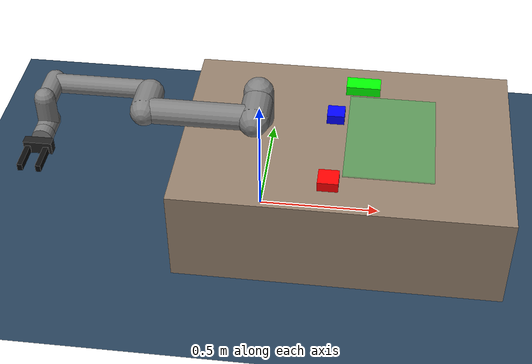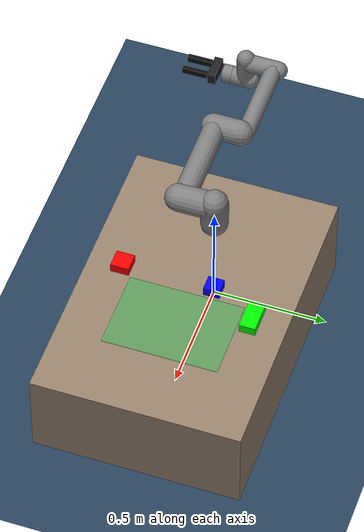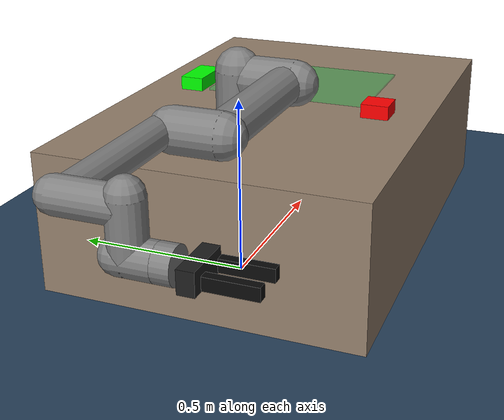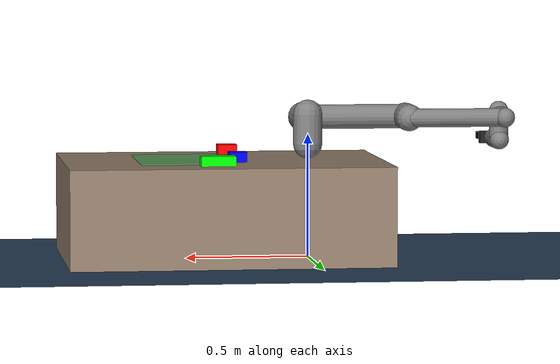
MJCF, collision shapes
<mujoco model="ur5e_llm3_pick_place">
  <compiler angle="radian" autolimits="true"/>

  <include file="ur5e_llm3_robot.xml"/>

  <statistic center="0.45 0 0.45" extent="1.0"/>

  <visual>
    <headlight diffuse="0.6 0.6 0.6" ambient="0.15 0.15 0.15" specular="0 0 0"/>
    <rgba haze="0.15 0.25 0.35 1"/>
    <global azimuth="130" elevation="-25"/>
  </visual>

  <asset>
    <texture type="skybox" builtin="gradient" rgb1="0.3 0.5 0.7" rgb2="0 0 0" width="512" height="3072"/>
    <texture type="2d" name="llm3_groundplane" builtin="checker" mark="edge" rgb1="0.2 0.3 0.4"
      rgb2="0.1 0.2 0.3" markrgb="0.8 0.8 0.8" width="300" height="300"/>
    <material name="llm3_groundplane" texture="llm3_groundplane" texuniform="true" texrepeat="5 5" reflectance="0.2"/>
    <material name="table_mat" rgba="0.58 0.50 0.42 1"/>
    <material name="target_area_mat" rgba="0.0 0.8 0.25 0.35"/>
  </asset>

  <worldbody>
    <light name="llm3_key_light" pos="0.2 -0.8 1.8" dir="0 0 -1" directional="true"/>
    <geom name="floor" size="0 0 0.05" type="plane" material="llm3_groundplane"/>

    <body name="target_table" pos="0.35 0 0.20">
      <geom name="target_table_geom" type="box" size="0.65 0.45 0.20" material="table_mat" friction="1.0 0.005 0.0001"/>
    </body>

    <geom name="target_area_marker" type="box" pos="0.525 0 0.403" size="0.175 0.25 0.003"
      material="target_area_mat" contype="0" conaffinity="0" group="1"/>

    <body name="red_box" pos="0.30 -0.30 0.42">
      <freejoint name="red_box_freejoint"/>
      <geom name="red_box_geom" type="box" size="0.04 0.04 0.02" rgba="1 0 0 1" mass="0.20"
        friction="1.0 0.005 0.0001"/>
    </body>

    <body name="blue_box" pos="0.30 0.10 0.42">
      <freejoint name="blue_box_freejoint"/>
      <geom name="blue_box_geom" type="box" size="0.035 0.035 0.02" rgba="0 0 1 1" mass="0.18"
        friction="1.0 0.005 0.0001"/>
    </body>

    <body name="green_box" pos="0.40 0.30 0.42">
      <freejoint name="green_box_freejoint"/>
      <geom name="green_box_geom" type="box" size="0.07 0.035 0.02" rgba="0 1 0 1" mass="0.25"
        friction="1.0 0.005 0.0001"/>
    </body>
  </worldbody>
</mujoco>

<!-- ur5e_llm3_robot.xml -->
<mujoco model="ur5e">
  <compiler angle="radian" autolimits="true"/>

  <option integrator="implicitfast"/>

  <default>
    <default class="ur5e">
      <material specular="0.5" shininess="0.25"/>
      <joint axis="0 1 0" range="-6.28319 6.28319" armature="0.1"/>
      <general gaintype="fixed" biastype="affine" ctrlrange="-6.2831 6.2831" gainprm="2000" biasprm="0 -2000 -400"
        forcerange="-150 150"/>
      <default class="size3">
        <default class="size3_limited">
          <joint range="-3.1415 3.1415"/>
          <general ctrlrange="-3.1415 3.1415"/>
        </default>
      </default>
      <default class="size1">
        <general gainprm="500" biasprm="0 -500 -100" forcerange="-28 28"/>
      </default>
      <default class="visual">
        <geom type="mesh" contype="0" conaffinity="0" group="2"/>
      </default>
      <default class="collision">
        <geom type="capsule" group="3"/>
        <default class="eef_collision">
          <geom type="cylinder"/>
        </default>
      </default>
      <site size="0.001" rgba="0.5 0.5 0.5 0.3" group="4"/>
    </default>
  </default>

  <asset>
    <material class="ur5e" name="black" rgba="0.033 0.033 0.033 1"/>
    <material class="ur5e" name="jointgray" rgba="0.278 0.278 0.278 1"/>
    <material class="ur5e" name="linkgray" rgba="0.82 0.82 0.82 1"/>
    <material class="ur5e" name="urblue" rgba="0.49 0.678 0.8 1"/>

    <mesh file="../assets/base_0.obj"/>
    <mesh file="../assets/base_1.obj"/>
    <mesh file="../assets/shoulder_0.obj"/>
    <mesh file="../assets/shoulder_1.obj"/>
    <mesh file="../assets/shoulder_2.obj"/>
    <mesh file="../assets/upperarm_0.obj"/>
    <mesh file="../assets/upperarm_1.obj"/>
    <mesh file="../assets/upperarm_2.obj"/>
    <mesh file="../assets/upperarm_3.obj"/>
    <mesh file="../assets/forearm_0.obj"/>
    <mesh file="../assets/forearm_1.obj"/>
    <mesh file="../assets/forearm_2.obj"/>
    <mesh file="../assets/forearm_3.obj"/>
    <mesh file="../assets/wrist1_0.obj"/>
    <mesh file="../assets/wrist1_1.obj"/>
    <mesh file="../assets/wrist1_2.obj"/>
    <mesh file="../assets/wrist2_0.obj"/>
    <mesh file="../assets/wrist2_1.obj"/>
    <mesh file="../assets/wrist2_2.obj"/>
    <mesh file="../assets/wrist3.obj"/>
  </asset>

  <worldbody>
    <light name="spotlight" mode="targetbodycom" target="wrist_2_link" pos="0 -1 2"/>
    <body name="base" pos="0 0 0.40" quat="0 0 0 -1" childclass="ur5e">
      <inertial mass="4.0" pos="0 0 0" diaginertia="0.00443333156 0.00443333156 0.0072"/>
      <geom mesh="base_0" material="black" class="visual"/>
      <geom mesh="base_1" material="jointgray" class="visual"/>
      <body name="shoulder_link" pos="0 0 0.163">
        <inertial mass="3.7" pos="0 0 0" diaginertia="0.0102675 0.0102675 0.00666"/>
        <joint name="shoulder_pan_joint" class="size3" axis="0 0 1"/>
        <geom mesh="shoulder_0" material="urblue" class="visual"/>
        <geom mesh="shoulder_1" material="black" class="visual"/>
        <geom mesh="shoulder_2" material="jointgray" class="visual"/>
        <geom class="collision" size="0.06 0.06" pos="0 0 -0.04"/>
        <body name="upper_arm_link" pos="0 0.138 0" quat="1 0 1 0">
          <inertial mass="8.393" pos="0 0 0.2125" diaginertia="0.133886 0.133886 0.0151074"/>
          <joint name="shoulder_lift_joint" class="size3"/>
          <geom mesh="upperarm_0" material="linkgray" class="visual"/>
          <geom mesh="upperarm_1" material="black" class="visual"/>
          <geom mesh="upperarm_2" material="jointgray" class="visual"/>
          <geom mesh="upperarm_3" material="urblue" class="visual"/>
          <geom class="collision" pos="0 -0.04 0" quat="1 1 0 0" size="0.06 0.06"/>
          <geom class="collision" size="0.05 0.2" pos="0 0 0.2"/>
          <body name="forearm_link" pos="0 -0.131 0.425">
            <inertial mass="2.275" pos="0 0 0.196" diaginertia="0.0311796 0.0311796 0.004095"/>
            <joint name="elbow_joint" class="size3_limited"/>
            <geom mesh="forearm_0" material="urblue" class="visual"/>
            <geom mesh="forearm_1" material="linkgray" class="visual"/>
            <geom mesh="forearm_2" material="black" class="visual"/>
            <geom mesh="forearm_3" material="jointgray" class="visual"/>
            <geom class="collision" pos="0 0.08 0" quat="1 1 0 0" size="0.055 0.06"/>
            <geom class="collision" size="0.038 0.19" pos="0 0 0.2"/>
            <body name="wrist_1_link" pos="0 0 0.392" quat="1 0 1 0">
              <inertial mass="1.219" pos="0 0.127 0" diaginertia="0.0025599 0.0025599 0.0021942"/>
              <joint name="wrist_1_joint" class="size1"/>
              <geom mesh="wrist1_0" material="black" class="visual"/>
              <geom mesh="wrist1_1" material="urblue" class="visual"/>
              <geom mesh="wrist1_2" material="jointgray" class="visual"/>
              <geom class="collision" pos="0 0.05 0" quat="1 1 0 0" size="0.04 0.07"/>
              <body name="wrist_2_link" pos="0 0.127 0">
                <inertial mass="1.219" pos="0 0 0.1" diaginertia="0.0025599 0.0025599 0.0021942"/>
                <joint name="wrist_2_joint" axis="0 0 1" class="size1"/>
                <geom mesh="wrist2_0" material="black" class="visual"/>
                <geom mesh="wrist2_1" material="urblue" class="visual"/>
                <geom mesh="wrist2_2" material="jointgray" class="visual"/>
                <geom class="collision" size="0.04 0.06" pos="0 0 0.04"/>
                <geom class="collision" pos="0 0.02 0.1" quat="1 1 0 0" size="0.04 0.04"/>
                <body name="wrist_3_link" pos="0 0 0.1">
                  <inertial mass="0.1889" pos="0 0.0771683 0" quat="1 0 0 1"
                    diaginertia="0.000132134 9.90863e-05 9.90863e-05"/>
                  <joint name="wrist_3_joint" class="size1"/>
                  <geom material="linkgray" mesh="wrist3" class="visual"/>
                  <geom class="eef_collision" pos="0 0.08 0" quat="1 1 0 0" size="0.04 0.02"/>
                  <site name="attachment_site" pos="0 0.1 0" quat="-1 1 0 0"/>
                  <body name="two_finger_gripper" pos="0 0.14 0">
                    <geom name="gripper_palm" type="box" size="0.055 0.018 0.025" rgba="0.12 0.12 0.12 1"
                      contype="0" conaffinity="0"/>
                    <body name="left_finger" pos="0.035 0.035 0">
                      <geom name="left_finger_pad" type="box" pos="0 0.045 0" size="0.010 0.055 0.014"
                        rgba="0.04 0.04 0.04 1" contype="0" conaffinity="0"/>
                    </body>
                    <body name="right_finger" pos="-0.035 0.035 0">
                      <geom name="right_finger_pad" type="box" pos="0 0.045 0" size="0.010 0.055 0.014"
                        rgba="0.04 0.04 0.04 1" contype="0" conaffinity="0"/>
                    </body>
                  </body>
                </body>
              </body>
            </body>
          </body>
        </body>
      </body>
    </body>
  </worldbody>

  <actuator>
    <general class="size3" name="shoulder_pan" joint="shoulder_pan_joint"/>
    <general class="size3" name="shoulder_lift" joint="shoulder_lift_joint"/>
    <general class="size3_limited" name="elbow" joint="elbow_joint"/>
    <general class="size1" name="wrist_1" joint="wrist_1_joint"/>
    <general class="size1" name="wrist_2" joint="wrist_2_joint"/>
    <general class="size1" name="wrist_3" joint="wrist_3_joint"/>
  </actuator>

  <keyframe>
    <key name="home" qpos="-1.5708 -1.5708 1.5708 -1.5708 -1.5708 0" ctrl="-1.5708 -1.5708 1.5708 -1.5708 -1.5708 0"/>
  </keyframe>
</mujoco>
